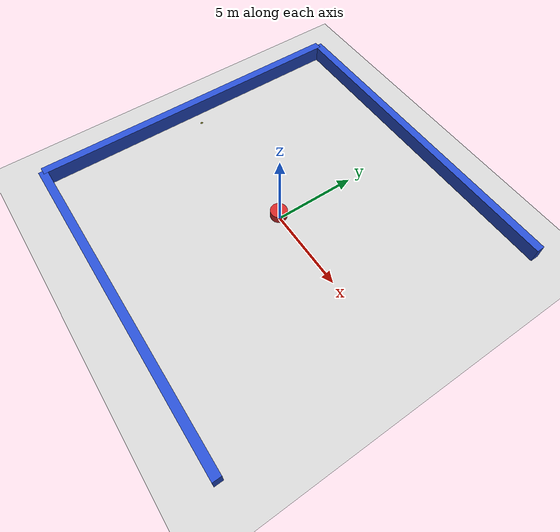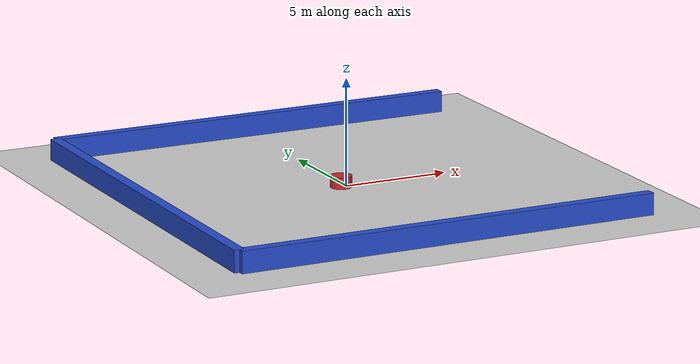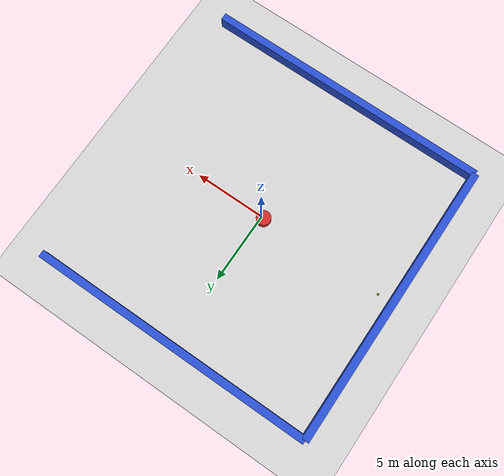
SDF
<sdf version="1.6">
   <world name="default">
      <include>
         <uri>model://ground_plane</uri>
      </include>
      <include>
         <uri>model://sun</uri>
      </include>

    <model name="mediumlibobs_87">
      <static>1</static>
      <pose frame="">-0.225000 0.075000 0.000000 0.000000 0.000000 0.000000</pose>
      <link name="link">
        <inertial>
          <mass>1</mass>
          <inertia>
            <ixx>0.145833</ixx>
            <ixy>0</ixy>
            <ixz>0</ixz>
            <iyy>0.145833</iyy>
            <iyz>0</iyz>
            <izz>0.125</izz>
          </inertia>
        </inertial>
        <collision name="collision">
           <geometry>
            <cylinder>
                <radius>0.5000</radius>
                 <length> 1 </length>
            </cylinder>
          </geometry>
           <surface>
            <contact>
              <ode />
            </contact>
            <bounce />
            <friction>
              <torsional>
                <ode />
              </torsional>
              <ode />
            </friction>
          </surface>
        </collision>
        <visual name="visual">
           <geometry>
            <cylinder>
                <radius>0.5000</radius>
                 <length> 1 </length>
            </cylinder>
          </geometry>
          <material>
            <script>
              <name>Gazebo/Red</name>
              <uri>file://media/materials/scripts/gazebo.material</uri>
            </script>
          </material>
        </visual>
        <self_collide>0</self_collide>
        <kinematic>0</kinematic>
        <gravity>1</gravity>
      </link>
      <plugin name="mediumlibobs_87" filename="mediumlibobs_87.so" />
    </model>

    <model name="hardlibobs_131">
      <static>1</static>
      <pose frame="">-0.225000 0.075000 0.000000 0.000000 0.000000 0.000000</pose>
      <link name="link">
        <inertial>
          <mass>1</mass>
          <inertia>
            <ixx>0.145833</ixx>
            <ixy>0</ixy>
            <ixz>0</ixz>
            <iyy>0.145833</iyy>
            <iyz>0</iyz>
            <izz>0.125</izz>
          </inertia>
        </inertial>
        <collision name="collision">
           <geometry>
            <cylinder>
                <radius>0.5000</radius>
                 <length> 1 </length>
            </cylinder>
          </geometry>
           <surface>
            <contact>
              <ode />
            </contact>
            <bounce />
            <friction>
              <torsional>
                <ode />
              </torsional>
              <ode />
            </friction>
          </surface>
        </collision>
        <visual name="visual">
           <geometry>
            <cylinder>
                <radius>0.5000</radius>
                 <length> 1 </length>
            </cylinder>
          </geometry>
          <material>
            <script>
              <name>Gazebo/Red</name>
              <uri>file://media/materials/scripts/gazebo.material</uri>
            </script>
          </material>
        </visual>
        <self_collide>0</self_collide>
        <kinematic>0</kinematic>
        <gravity>1</gravity>
      </link>
      <plugin name="hardlibobs_131" filename="hardlibobs_131.so" />
    </model>

    <model name="mediumlibobs_171">
      <static>1</static>
      <pose frame="">-0.225000 0.075000 0.000000 0.000000 0.000000 0.000000</pose>
      <link name="link">
        <inertial>
          <mass>1</mass>
          <inertia>
            <ixx>0.145833</ixx>
            <ixy>0</ixy>
            <ixz>0</ixz>
            <iyy>0.145833</iyy>
            <iyz>0</iyz>
            <izz>0.125</izz>
          </inertia>
        </inertial>
        <collision name="collision">
           <geometry>
            <cylinder>
                <radius>0.5000</radius>
                 <length> 1 </length>
            </cylinder>
          </geometry>
           <surface>
            <contact>
              <ode />
            </contact>
            <bounce />
            <friction>
              <torsional>
                <ode />
              </torsional>
              <ode />
            </friction>
          </surface>
        </collision>
        <visual name="visual">
           <geometry>
            <cylinder>
                <radius>0.5000</radius>
                 <length> 1 </length>
            </cylinder>
          </geometry>
          <material>
            <script>
              <name>Gazebo/Red</name>
              <uri>file://media/materials/scripts/gazebo.material</uri>
            </script>
          </material>
        </visual>
        <self_collide>0</self_collide>
        <kinematic>0</kinematic>
        <gravity>1</gravity>
      </link>
      <plugin name="mediumlibobs_171" filename="mediumlibobs_171.so" />
    </model>

    <model name="hardlibobs_170">
      <static>1</static>
      <pose frame="">-0.225000 0.075000 0.000000 0.000000 0.000000 0.000000</pose>
      <link name="link">
        <inertial>
          <mass>1</mass>
          <inertia>
            <ixx>0.145833</ixx>
            <ixy>0</ixy>
            <ixz>0</ixz>
            <iyy>0.145833</iyy>
            <iyz>0</iyz>
            <izz>0.125</izz>
          </inertia>
        </inertial>
        <collision name="collision">
           <geometry>
            <cylinder>
                <radius>0.5000</radius>
                 <length> 1 </length>
            </cylinder>
          </geometry>
           <surface>
            <contact>
              <ode />
            </contact>
            <bounce />
            <friction>
              <torsional>
                <ode />
              </torsional>
              <ode />
            </friction>
          </surface>
        </collision>
        <visual name="visual">
           <geometry>
            <cylinder>
                <radius>0.5000</radius>
                 <length> 1 </length>
            </cylinder>
          </geometry>
          <material>
            <script>
              <name>Gazebo/Red</name>
              <uri>file://media/materials/scripts/gazebo.material</uri>
            </script>
          </material>
        </visual>
        <self_collide>0</self_collide>
        <kinematic>0</kinematic>
        <gravity>1</gravity>
      </link>
      <plugin name="hardlibobs_170" filename="hardlibobs_170.so" />
    </model>

    <model name="mediumlibobs_169">
      <static>1</static>
      <pose frame="">-0.225000 0.075000 0.000000 0.000000 0.000000 0.000000</pose>
      <link name="link">
        <inertial>
          <mass>1</mass>
          <inertia>
            <ixx>0.145833</ixx>
            <ixy>0</ixy>
            <ixz>0</ixz>
            <iyy>0.145833</iyy>
            <iyz>0</iyz>
            <izz>0.125</izz>
          </inertia>
        </inertial>
        <collision name="collision">
           <geometry>
            <cylinder>
                <radius>0.5000</radius>
                 <length> 1 </length>
            </cylinder>
          </geometry>
           <surface>
            <contact>
              <ode />
            </contact>
            <bounce />
            <friction>
              <torsional>
                <ode />
              </torsional>
              <ode />
            </friction>
          </surface>
        </collision>
        <visual name="visual">
           <geometry>
            <cylinder>
                <radius>0.5000</radius>
                 <length> 1 </length>
            </cylinder>
          </geometry>
          <material>
            <script>
              <name>Gazebo/Red</name>
              <uri>file://media/materials/scripts/gazebo.material</uri>
            </script>
          </material>
        </visual>
        <self_collide>0</self_collide>
        <kinematic>0</kinematic>
        <gravity>1</gravity>
      </link>
      <plugin name="mediumlibobs_169" filename="mediumlibobs_169.so" />
    </model>

    <model name="mediumlibobs_36">
      <static>1</static>
      <pose frame="">-0.225000 0.075000 0.000000 0.000000 0.000000 0.000000</pose>
      <link name="link">
        <inertial>
          <mass>1</mass>
          <inertia>
            <ixx>0.145833</ixx>
            <ixy>0</ixy>
            <ixz>0</ixz>
            <iyy>0.145833</iyy>
            <iyz>0</iyz>
            <izz>0.125</izz>
          </inertia>
        </inertial>
        <collision name="collision">
           <geometry>
            <cylinder>
                <radius>0.5000</radius>
                 <length> 1 </length>
            </cylinder>
          </geometry>
           <surface>
            <contact>
              <ode />
            </contact>
            <bounce />
            <friction>
              <torsional>
                <ode />
              </torsional>
              <ode />
            </friction>
          </surface>
        </collision>
        <visual name="visual">
           <geometry>
            <cylinder>
                <radius>0.5000</radius>
                 <length> 1 </length>
            </cylinder>
          </geometry>
          <material>
            <script>
              <name>Gazebo/Red</name>
              <uri>file://media/materials/scripts/gazebo.material</uri>
            </script>
          </material>
        </visual>
        <self_collide>0</self_collide>
        <kinematic>0</kinematic>
        <gravity>1</gravity>
      </link>
      <plugin name="mediumlibobs_36" filename="mediumlibobs_36.so" />
    </model>

    <model name="mediumlibobs_14">
      <static>1</static>
      <pose frame="">-0.225000 0.075000 0.000000 0.000000 0.000000 0.000000</pose>
      <link name="link">
        <inertial>
          <mass>1</mass>
          <inertia>
            <ixx>0.145833</ixx>
            <ixy>0</ixy>
            <ixz>0</ixz>
            <iyy>0.145833</iyy>
            <iyz>0</iyz>
            <izz>0.125</izz>
          </inertia>
        </inertial>
        <collision name="collision">
           <geometry>
            <cylinder>
                <radius>0.5000</radius>
                 <length> 1 </length>
            </cylinder>
          </geometry>
           <surface>
            <contact>
              <ode />
            </contact>
            <bounce />
            <friction>
              <torsional>
                <ode />
              </torsional>
              <ode />
            </friction>
          </surface>
        </collision>
        <visual name="visual">
           <geometry>
            <cylinder>
                <radius>0.5000</radius>
                 <length> 1 </length>
            </cylinder>
          </geometry>
          <material>
            <script>
              <name>Gazebo/Red</name>
              <uri>file://media/materials/scripts/gazebo.material</uri>
            </script>
          </material>
        </visual>
        <self_collide>0</self_collide>
        <kinematic>0</kinematic>
        <gravity>1</gravity>
      </link>
      <plugin name="mediumlibobs_14" filename="mediumlibobs_14.so" />
    </model>

      <model name="back_wall">
      <static>1</static>\   <pose frame="">-10 0 .5 0 0 0</pose>        <link name="box_link">

	<collision name="collision">
            <geometry>
              <box>
                <size>.5 20 1</size>
              </box>
            </geometry>
           <surface>
            <contact>
              <ode />
            </contact>
            <bounce />
            <friction>
              <torsional>
                <ode />
              </torsional>
              <ode />
            </friction>
          </surface>
        </collision>

          <visual name="visual">
            <geometry>
              <box>
                <size>.5 20 1</size>
              </box>
            </geometry>
          <material>
                 <script>
                     <name>Gazebo/Blue</name>
                         <uri>file://media/materials/scripts/gazebo.material</uri>
                         </script>
                     </material>
          </visual>
        </link>
      </model>
      <model name="top_wall">
      <static>1</static>
       <pose frame="">0 10 .5 0 0 0</pose>        <link name="box_link">

	<collision name="collision">
           <geometry>
              <box>
                <size>20 .5 1</size>
              </box>
            </geometry>
           <surface>
            <contact>
              <ode />
            </contact>
            <bounce />
            <friction>
              <torsional>
                <ode />
              </torsional>
              <ode />
            </friction>
          </surface>
        </collision>
          <visual name="visual">
            <geometry>
              <box>
                <size>20 .5 1</size>
              </box>
            </geometry>
          <material>
                 <script>
                     <name>Gazebo/Blue</name>
                         <uri>file://media/materials/scripts/gazebo.material</uri>
                         </script>
                     </material>
          </visual>
        </link>
      </model>
      <model name="bottom_wall">
      <static>1</static>
       <pose frame="">0 -10 .5 0 0 0</pose>        <link name="box_link">
	<collision name="collision">
            <geometry>
              <box>
                <size>20 .5 1</size>
              </box>
            </geometry>
           <surface>
            <contact>
              <ode />
            </contact>
            <bounce />
            <friction>
              <torsional>
                <ode />
              </torsional>
              <ode />
            </friction>
          </surface>
        </collision>
          <visual name="visual">
            <geometry>
              <box>
                <size>20 .5 1</size>
              </box>
            </geometry>
          <material>
                 <script>
                     <name>Gazebo/Blue</name>
                         <uri>file://media/materials/scripts/gazebo.material</uri>
                         </script>
                     </material>
          </visual>
        </link>
      </model>
   <model name="goal"><static>1</static><pose frame="">-9.00000 0.000000 0.000000 0.000000 0.000000 0.000000</pose><link name="link"><inertial><mass>1</mass><inertia><ixx>0.145833</ixx><ixy>0</ixy><ixz>0</ixz><iyy>0.145833</iyy><iyz>0</iyz><izz>0.125</izz></inertia></inertial><collision name="collision"><geometry><cylinder><radius>0.075000</radius><length>1</length></cylinder></geometry><max_contacts>10</max_contacts><surface><contact><ode /></contact><bounce /><friction><torsional><ode /></torsional><ode /></friction></surface></collision><visual name="visual"><geometry><cylinder><radius>0.075000</radius><length>0.001</length></cylinder></geometry><material><ambient>0 1 0 1</ambient><diffuse>0.4 0.4 0.1 1</diffuse></material><material><script><name>Gazebo/Grey</name><uri>file://media/materials/scripts/gazebo.material</uri></script></material></visual><self_collide>0</self_collide><kinematic>0</kinematic><gravity>0</gravity></link></model></world>
</sdf>
